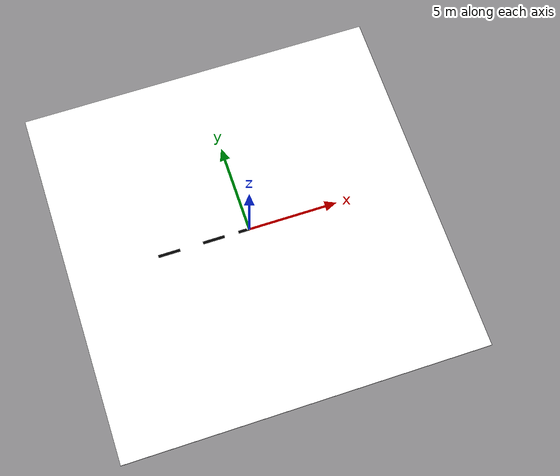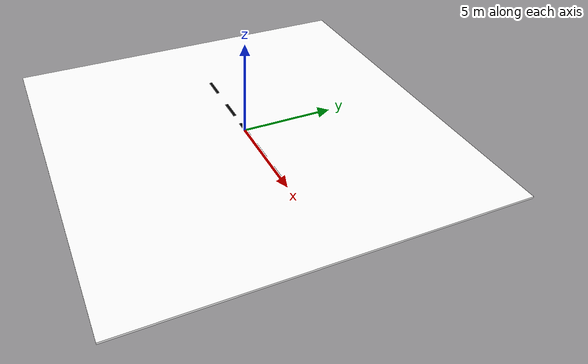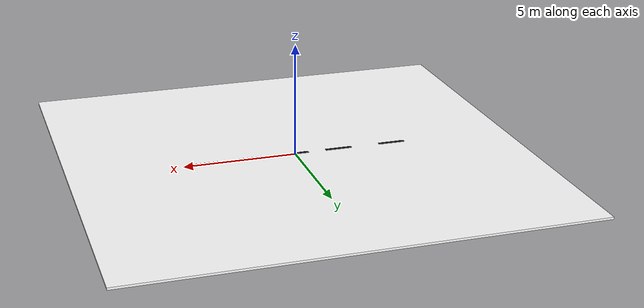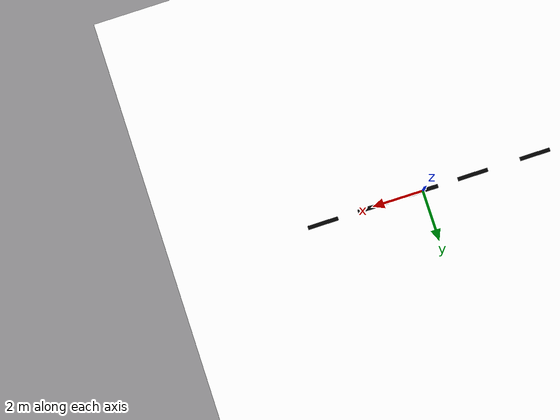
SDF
<?xml version="1.0" ?>
<sdf version="1.9">
  <world name="alap_teszt">

    <light name="sun" type="directional">
      <pose>0 0 10 0 0 0</pose>
      <direction>-0.5 0.1 -1</direction>
    </light>

    <model name="ground_plane">
      <static>true</static>
      <link name="link">
        <collision name="collision">
          <geometry>
            <box>
              <size>20 20 0.1</size>
            </box>
          </geometry>
        </collision>
        <visual name="visual">
          <geometry>
            <box>
              <size>20 20 0.1</size>
            </box>
          </geometry>
          <material>
            <ambient>1 1 1 1</ambient>
            <diffuse>1 1 1 1</diffuse>
          </material>
        </visual>
      </link>
    </model>

    <model name="line_1">
      <static>true</static>
      <pose>-4.5 0 0.06 0 0 0</pose>
      <link name="link">
        <visual name="visual">
          <geometry>
            <box><size>1.2 0.15 0.02</size></box>
          </geometry>
          <material>
            <ambient>0 0 0 1</ambient>
            <diffuse>0 0 0 1</diffuse>
          </material>
        </visual>
      </link>
    </model>

    <model name="line_2">
      <static>true</static>
      <pose>-2 0 0.06 0 0 0</pose>
      <link name="link">
        <visual name="visual">
          <geometry>
            <box><size>1.2 0.15 0.02</size></box>
          </geometry>
          <material>
            <ambient>0 0 0 1</ambient>
            <diffuse>0 0 0 1</diffuse>
          </material>
        </visual>
      </link>
    </model>

    <model name="line_3">
      <static>true</static>
      <pose>0 0 0.06 0 0 0</pose>
      <link name="link">
        <visual name="visual">
          <geometry>
            <box><size>1.2 0.15 0.02</size></box>
          </geometry>
          <material>
            <ambient>0 0 0 1</ambient>
            <diffuse>0 0 0 1</diffuse>
          </material>
        </visual>
      </link>
    </model>

    <model name="line_4">
      <static>true</static>
      <pose>2 0 0.06 0 0 0</pose>
      <link name="link">
        <visual name="visual">
          <geometry>
            <box><size>1.2 0.15 0.02</size></box>
          </geometry>
          <material>
            <ambient>0 0 0 1</ambient>
            <diffuse>0 0 0 1</diffuse>
          </material>
        </visual>
      </link>
    </model>

    <model name="line_5">
      <static>true</static>
      <pose>4 0 0.06 0 0 0</pose>
      <link name="link">
        <visual name="visual">
          <geometry>
            <box><size>1.2 0.15 0.02</size></box>
          </geometry>
          <material>
            <ambient>0 0 0 1</ambient>
            <diffuse>0 0 0 1</diffuse>
          </material>
        </visual>
      </link>
    </model>

  </world>
</sdf>
